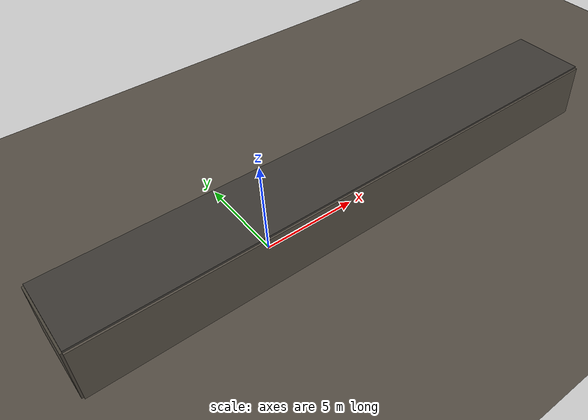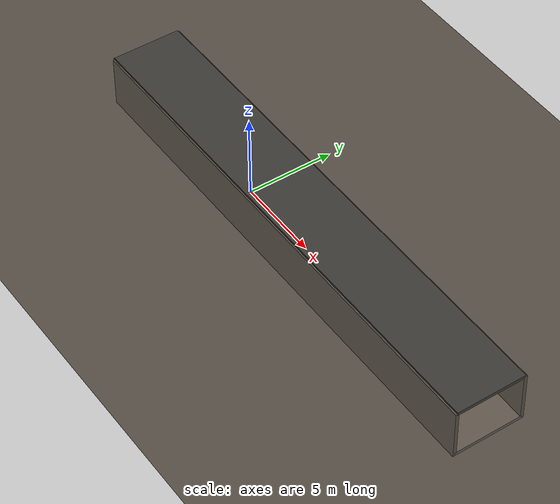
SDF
<?xml version="1.0" ?>
<sdf version="1.8">
  <world name="cave">
    <physics name="1ms" type="ode">
      <max_step_size>0.001</max_step_size>
      <real_time_factor>1.0</real_time_factor>
      <real_time_update_rate>1000</real_time_update_rate>
    </physics>
    <plugin filename="gz-sim-physics-system" name="gz::sim::systems::Physics"/>
    <plugin filename="gz-sim-user-commands-system" name="gz::sim::systems::UserCommands"/>
    <plugin filename="gz-sim-scene-broadcaster-system" name="gz::sim::systems::SceneBroadcaster"/>
    <plugin filename="ignition-gazebo-imu-system" name="gz::sim::systems::Imu"/>
    <plugin filename="gz-sim-sensors-system" name="gz::sim::systems::Sensors">
      <render_engine>ogre2</render_engine>
    </plugin>

    <gui fullscreen="0">
      <camera name="user_camera">
        <pose>3 -5 2.5 0 0.35 1.57</pose>
      </camera>
    </gui>

    <light type="directional" name="sun">
      <cast_shadows>true</cast_shadows>
      <pose>0 0 10 0 0 0</pose>
      <diffuse>0.7 0.7 0.72 1</diffuse>
      <specular>0.15 0.15 0.15 1</specular>
      <direction>-0.4 0.2 -0.9</direction>
    </light>

    <model name="ground_plane">
      <static>true</static>
      <link name="link">
        <collision name="collision">
          <geometry>
            <plane>
              <normal>0 0 1</normal>
            </plane>
          </geometry>
        </collision>
        <visual name="visual">
          <geometry>
            <plane>
              <normal>0 0 1</normal>
              <size>100 100</size>
            </plane>
          </geometry>
          <material>
            <ambient>0.35 0.32 0.28 1</ambient>
            <diffuse>0.35 0.32 0.28 1</diffuse>
          </material>
        </visual>
      </link>
    </model>

    <!-- Ground-level cave tunnel; robot default spawn at (3, 0, 0.15) -->
    <model name="cave_tunnel">
      <static>true</static>
      <pose>5 0 0 0 0 0</pose>
      <link name="floor">
        <pose>0 0 0.1 0 0 0</pose>
        <collision name="floor_collision">
          <geometry><box><size>30 4 0.2</size></box></geometry>
        </collision>
        <visual name="floor_visual">
          <geometry><box><size>30 4 0.2</size></box></geometry>
          <material><ambient>0.4 0.36 0.32 1</ambient><diffuse>0.4 0.36 0.32 1</diffuse></material>
        </visual>
      </link>
      <link name="ceiling">
        <pose>0 0 3 0 0 0</pose>
        <collision name="ceiling_collision">
          <geometry><box><size>30 4 0.2</size></box></geometry>
        </collision>
        <visual name="ceiling_visual">
          <geometry><box><size>30 4 0.2</size></box></geometry>
          <material><ambient>0.25 0.24 0.22 1</ambient><diffuse>0.25 0.24 0.22 1</diffuse></material>
        </visual>
      </link>
      <link name="left_wall">
        <pose>0 2 1.5 0 0 0</pose>
        <collision name="left_wall_collision">
          <geometry><box><size>30 0.2 3</size></box></geometry>
        </collision>
        <visual name="left_wall_visual">
          <geometry><box><size>30 0.2 3</size></box></geometry>
          <material><ambient>0.35 0.32 0.28 1</ambient><diffuse>0.35 0.32 0.28 1</diffuse></material>
        </visual>
      </link>
      <link name="right_wall">
        <pose>0 -2 1.5 0 0 0</pose>
        <collision name="right_wall_collision">
          <geometry><box><size>30 0.2 3</size></box></geometry>
        </collision>
        <visual name="right_wall_visual">
          <geometry><box><size>30 0.2 3</size></box></geometry>
          <material><ambient>0.35 0.32 0.28 1</ambient><diffuse>0.35 0.32 0.28 1</diffuse></material>
        </visual>
      </link>
      <link name="back_wall">
        <pose>-15 0 1.5 0 0 0</pose>
        <collision name="back_wall_collision">
          <geometry><box><size>0.2 4 3</size></box></geometry>
        </collision>
        <visual name="back_wall_visual">
          <geometry><box><size>0.2 4 3</size></box></geometry>
          <material><ambient>0.3 0.28 0.24 1</ambient><diffuse>0.3 0.28 0.24 1</diffuse></material>
        </visual>
      </link>
    </model>

    <model name="bump_1">
      <static>true</static>
      <pose>3 0 0.15 0 0 0</pose>
      <link name="link">
        <collision name="collision"><geometry><box><size>1.5 2.0 0.3</size></box></geometry></collision>
        <visual name="visual"><geometry><box><size>1.5 2.0 0.3</size></box></geometry>
          <material><ambient>0.45 0.38 0.3 1</ambient><diffuse>0.45 0.38 0.3 1</diffuse></material>
        </visual>
      </link>
    </model>
    <model name="bump_2">
      <static>true</static>
      <pose>8 -0.5 0.2 0 0 0.1</pose>
      <link name="link">
        <collision name="collision"><geometry><box><size>2.0 1.5 0.4</size></box></geometry></collision>
        <visual name="visual"><geometry><box><size>2.0 1.5 0.4</size></box></geometry>
          <material><ambient>0.42 0.35 0.28 1</ambient><diffuse>0.42 0.35 0.28 1</diffuse></material>
        </visual>
      </link>
    </model>
    <model name="bump_3">
      <static>true</static>
      <pose>12 0.3 0.12 0 0 -0.05</pose>
      <link name="link">
        <collision name="collision"><geometry><box><size>1.2 2.5 0.24</size></box></geometry></collision>
        <visual name="visual"><geometry><box><size>1.2 2.5 0.24</size></box></geometry>
          <material><ambient>0.48 0.4 0.32 1</ambient><diffuse>0.48 0.4 0.32 1</diffuse></material>
        </visual>
      </link>
    </model>
  </world>
</sdf>
